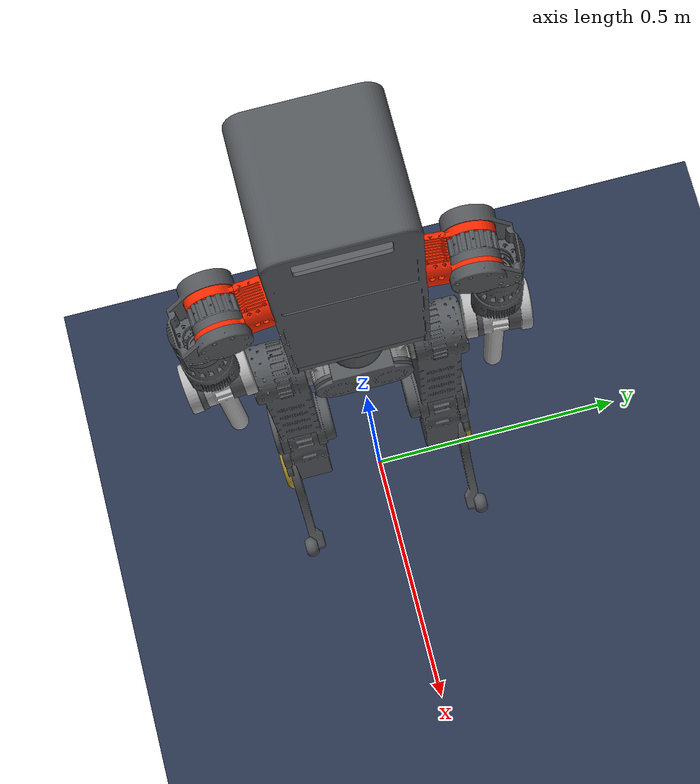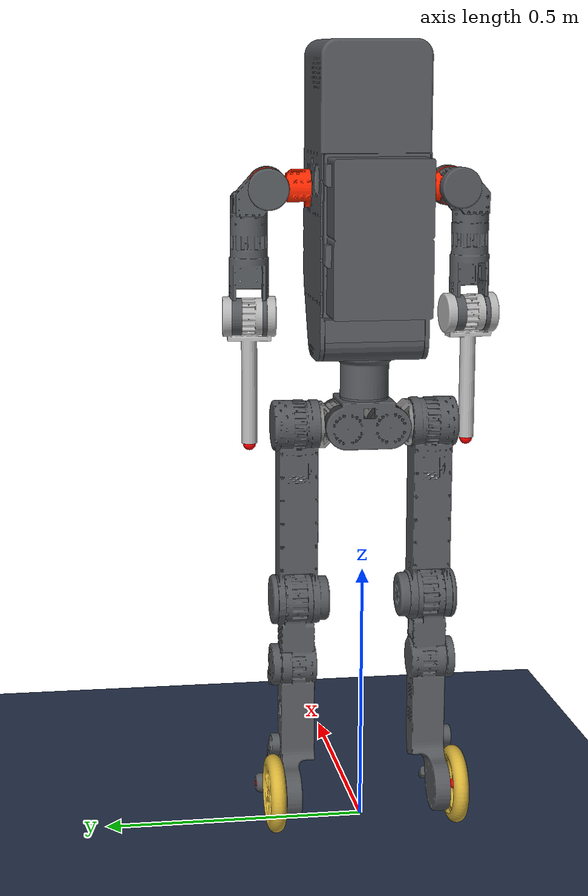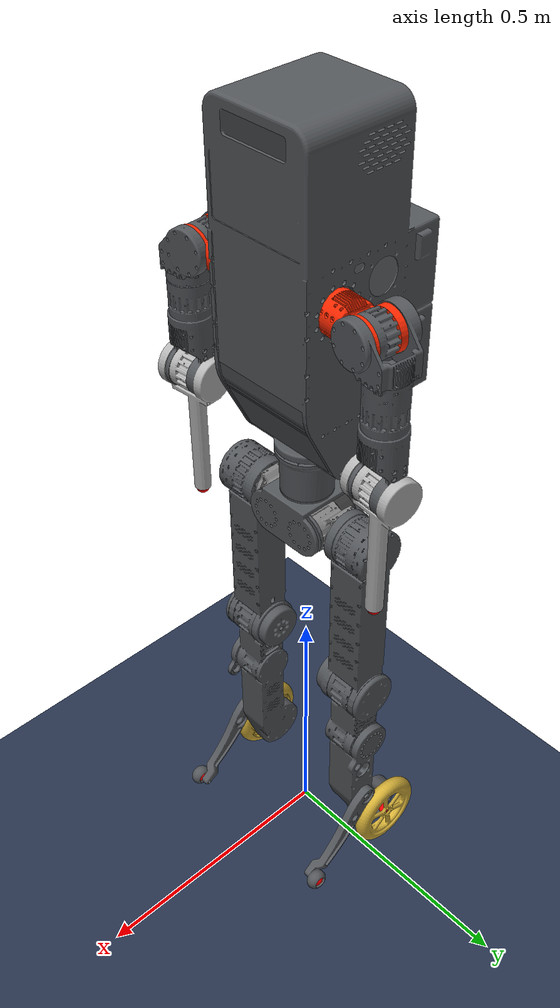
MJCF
<mujoco model="MAHRU_TWL">
	<compiler angle="radian" coordinate="local" autolimits="true" meshdir="Meshes/"/>

	<option timestep="0.001" gravity="0 0 -9.81" tolerance="1e-08" cone="elliptic" jacobian="auto" solver="CG" iterations="30" />
	<size njmax="500" nconmax="100" />

	<visual>
		<global fovy="45" linewidth="2" glow="0.3"/>
		<quality shadowsize="2048" numslices="48"/>
		<map stiffness="50" stiffnessrot="100"/>
		<scale forcewidth="0.03" contactwidth="0.15" contactheight="0.1" connect="0.1" com="0.05" jointlength="0.25" jointwidth="0.05"
					 actuatorlength="0.5" actuatorwidth="0.3" framelength="1" framewidth="0.03"/>
		<rgba haze="0.6 0.8 0.9 1" force="1 0 0 0.5" com="0 0 1 1"/>
	</visual>

	<default>
		<geom contype="1" conaffinity="1" condim="3" material="MatLink"/>
		<joint limited="false" damping="2" armature="0.1" stiffness="0" frictionloss="0.2"/>
		<motor gear="1 0 0 0 0 0" ctrllimited="false" ctrlrange="-100 100"/>
	</default>

	<asset>
		<mesh name="base_link" file="base_link.STL" />
		<mesh name="TOP" file="TOP.STL" />
		<mesh name="RA1" file="RA1.STL" />
		<mesh name="RA2" file="RA2.STL" />
		<mesh name="RA3" file="RA3.STL" />
		<mesh name="RA4" file="RA4.STL" />
		<mesh name="LA1" file="LA1.STL" />
		<mesh name="LA2" file="LA2.STL" />
		<mesh name="LA3" file="LA3.STL" />
		<mesh name="LA4" file="LA4.STL" />
		<mesh name="RL1" file="RL1.STL" />
		<mesh name="RL2" file="RL2.STL" />
		<mesh name="RL3" file="RL3.STL" />
		<mesh name="RL4" file="RL4.STL" />
		<mesh name="RW" file="RW.STL" />
		<mesh name="LL1" file="LL1.STL" />
		<mesh name="LL2" file="LL2.STL" />
		<mesh name="LL3" file="LL3.STL" />
		<mesh name="LL4" file="LL4.STL" />
		<mesh name="LW" file="LW.STL" />

		<texture name="picwheel" type="2d" builtin="none" file="Wheel-01.png"/>
		<texture name="texplane" type="2d" builtin="checker"  width="512" height="512" mark="edge"
						 rgb1="0.2 0.3 0.4" rgb2="0.1 0.1 0.2" markrgb="1 1 1"/>

		<material name="MatGnd"   reflectance="0" specular="1" shininess="1" rgba="0 0.4 0.5 1"/>
		<material name="MatLink"  reflectance="0.5" specular="1" shininess="0.3" rgba="0.5 0.5 0.5 1"/>
		<material name="MatPlane" texture="texplane" reflectance='0.05' texrepeat="1 1" texuniform="true"/>
		<material name="MatWheel" texture="picwheel" emission="0.3" reflectance="0.3" shininess="0.5"/>
	</asset>

	<worldbody>
		<!-- Light-->
		<light directional="true" pos=" 5 -5 5" dir="-0.5  0.5 -1" diffuse="0.3 0.3 0.3" specular="0.0 0.0 0.0" castshadow="false"/>
		<light directional="true" pos=" 5  5 5" dir="-0.5 -0.5 -1" diffuse="0.3 0.3 0.3" specular="0.0 0.0 0.0" castshadow="false"/>
		<light directional="true" pos="-5  5 5" dir=" 0.5 -0.5 -1" diffuse="0.3 0.3 0.3" specular="0.0 0.0 0.0" castshadow="false"/>
		<light directional="true" pos="-5 -5 5" dir=" 0.5  0.5 -1" diffuse="0.3 0.3 0.3" specular="0.0 0.0 0.0" castshadow="false"/>

		<!-- Ground -->
		<geom name="Ground" type="plane" pos="0 0 0" size="0 0 1" material="MatPlane" condim="3"/>

		<body name="Pelvis" pos="0 0 0.87">
			<joint name="Floating_Base" type="free" armature="0"/>
			<inertial pos="-0.00293976 1.32398e-09 -0.0693448" quat="0.707092 0.707092 -0.00461587 0.00461587"
								mass="0.663335" diaginertia="0.00122749 0.00115815 0.000481685"/>
			<geom type="mesh" mesh="base_link" rgba="0.32421875 0.3359375 0.3515625 1"/>

			<body name="UpperBody" pos="0 0 0.35639">
				<inertial pos="-0.048997 0.00059458 -0.0674766" quat="0.998637 -0.00504995 0.051946 0.000815917"
									mass="12.7217" diaginertia="0.0573787 0.0483973 0.0405027"/>
				<joint name="TOPJ" pos="0 0 0" axis="0 0 1" limited="true" range="-0.5 0.5"/>
				<geom type="mesh" mesh="TOP" rgba="0.32421875 0.3359375 0.3515625 1"/>
				<geom type="cylinder" pos="-0.06 0 -0.27" euler="1.57 0 0" size="0.040 0.0921" rgba="0.32421875 0.3359375 0.3515625 1"/>
				<geom type="box" pos="-0.09 0 -0.22" size="0.01 0.0921 0.05" rgba="0.32421875 0.3359375 0.3515625 1"/>
				<geom type="box" pos="0.0645 0 -0.235" euler="0 0.455 0" size="0.001 0.0921 0.06" rgba="0.32421875 0.3359375 0.3515625 1"/>
				<geom type="cylinder" pos="-0.0021 0 -0.1472" euler="1.57 0 0" size="0.1 0.0921" rgba="0.32421875 0.3359375 0.3515625 1"/>

				<!-- Right Arm -->
				<body name="RA1" pos="0.047556 -0.17703 0" quat="0.706432 0.706435 0.0308435 0.0308433">
					<joint name="RAJ1" pos="0 0 0" axis="0 0 1" limited="true" range="-3.14 3.14"/>
					<inertial pos="-0.0022174 0.000646182 -0.0905734" quat="0.529029 0.519537 -0.477301 0.471586"
										mass="0.760413" diaginertia="0.000421496 0.000390053 0.000367509"/>
					<geom type="mesh" mesh="RA1" rgba="1 0.15625 0 1"/>

					<body name="RA2" pos="0 0 0" quat="-2.59734e-06 0.707105 2.59735e-06 0.707108">
						<joint name="RAJ2" pos="0 0 0" axis="0 0 1" limited="true" range="-1.57 1.57"/>
						<inertial pos="0.00839424 0.00457938 -0.00207496" quat="-0.22546 0.649098 0.212913 0.694628"
											mass="0.595912" diaginertia="0.000417113 0.000286358 0.000213342"/>
						<geom type="mesh" mesh="RA2" rgba="0.32421875 0.3359375 0.3515625 1"/>

						<body name="RA3" pos="0.035 0.12115 0.00305" quat="0.499998 -0.5 -0.5 -0.500002">
							<joint name="RAJ3" pos="0 0 0" axis="0 0 1" limited="true" range="-1 1"/>
							<inertial pos="-0.000338046 -0.00117373 0.010182" quat="-0.0187317 0.718878 -0.0217545 0.694544"
												mass="0.919977" diaginertia="0.000460641 0.000415222 0.000384275"/>
							<geom type="mesh" mesh="RA3" rgba="0.32421875 0.3359375 0.3515625 1"/>

							<body name="RA4" pos="3e-05 0.0003 0.11885" quat="0.707105 -0.707108 0 0">
								<joint name="RAJ4" pos="0 0 0" axis="0 0 1" limited="true" range="-0.05 1.7"/>
								<inertial pos="-2.9077e-05 -0.0332366 0.00190144" quat="0.500583 0.499412 -0.49929 0.500713"
													mass="0.663638" diaginertia="0.0008007 0.000678786 0.000202803"/>
								<geom name="RA" type="mesh" mesh="RA4" rgba="0.7 0.7 0.7 1"/>
								<site name="RArm_EE" pos="0 -0.245 0" size="0.012" type="sphere" rgba="1 0 0 1"/>
							</body>
						</body>
					</body>
				</body>

				<!-- Left Arm -->
				<body name="LA1" pos="0.047556 0.17703 0" quat="0.706432 0.706435 -0.0308435 -0.0308433">
					<joint name="LAJ1" pos="0 0 0" axis="0 0 1" limited="true" range="-3.14 3.14"/>
					<inertial pos="-0.00218056 0.000646182 0.0905734" quat="0.529029 0.519537 -0.477301 0.471586"
										mass="0.760413" diaginertia="0.000421496 0.000390053 0.000367509" />
					<geom type="mesh" mesh="LA1" rgba="1 0.15625 0 1"/>

					<body name="LA2" pos="0 0 0" quat="-2.59734e-06 0.707105 2.59735e-06 0.707108">
						<joint name="LAJ2" pos="0 0 0" axis="0 0 1" limited="true" range="-1.57 1.57"/>
						<inertial pos="-0.00839424 0.00464648 -0.00212455" quat="-0.22546 0.649098 0.212913 0.694628"
											mass="0.595912" diaginertia="0.000417113 0.000286358 0.000213342"/>
						<geom type="mesh" mesh="LA2" rgba="0.32421875 0.3359375 0.3515625 1"/>

						<body name="LA3" pos="-0.035 0.12115 0.00305" quat="0.499998 -0.5 -0.5 -0.500002">
							<joint name="LAJ3" pos="0 0 0" axis="0 0 1" limited="true" range="-1 1"/>
							<inertial pos="-0.000338047 -0.00117373 0.010182" quat="-0.0187317 0.718878 -0.0217545 0.694544"
												mass="0.919977" diaginertia="0.000460641 0.000415222 0.000384275"/>
							<geom type="mesh" mesh="LA3" rgba="0.32421875 0.3359375 0.3515625 1"/>

							<body name="LA4" pos="3e-05 0.0003 0.11885" quat="0.707105 -0.707108 0 0">
								<joint name="LAJ4" pos="0 0 0" axis="0 0 1" limited="true" range="-0.05 1.7"/>
								<inertial pos="-2.9077e-05 -0.0332366 0.00190144" quat="0.500583 0.499412 -0.49929 0.500713"
													mass="0.663638" diaginertia="0.0008007 0.000678786 0.000202803" />
								<geom name="LA" type="mesh" mesh="LA4" rgba="0.7 0.7 0.7 1"/>
								<site name="LArm_EE" pos="0 -0.245 0" size="0.012" type="sphere" rgba="1 0 0 1"/>
							</body>
						</body>
					</body>
				</body>
			</body> <!-- End of TOP -->

			<!-- Right Leg -->
			<body name="RL1" pos="0 -0.0405 -0.083614" quat="0.499998 -0.5 0.500002 -0.5">
				<joint name="RLJ1" pos="0 0 0" axis="0 0 1" limited="true" range="-1.57 0.1"/>
				<inertial pos="0.0277301 -0.240185 0.0201778" quat="0.522838 0.521369 -0.476954 0.476791"
									mass="1.39472" diaginertia="0.000946984 0.00078212 0.000703348" />
				<geom type="mesh" mesh="RL1" rgba="0.5 0.5 0.5 1"/>
				<geom type="cylinder" pos="0 0 -0.0275" size="0.04 0.014" rgba="0.2 0.2 0.2 1"/>
				<geom type="cylinder" pos="0 0 0.0422" size="0.04 0.003" rgba="0.32421875 0.3359375 0.3515625 1"/>

				<body name="RL2" pos="0.07925 0 0" quat="2.31078e-07 0.707105 -2.31079e-07 0.707108">
					<joint name="RLJ2" pos="0 0 0" axis="0 0 1" limited="true" range="-0.5 1.57"/>
					<inertial pos="0.000106717 -0.0839727 -0.0181511" quat="0.505728 0.506179 -0.494252 0.493698"
										mass="2.22253" diaginertia="0.0101134 0.00973372 0.00125876"/>
					<geom type="mesh" mesh="RL2" rgba="0.32421875 0.3359375 0.3515625 1"/>

					<body name="RL3" pos="0 -0.34 0">
						<joint name="RLJ3" pos="0 0 0" axis="0 0 1" limited="true" range="-1.7 0"/>
						<inertial pos="-0.0043099 -0.139813 0.012094" quat="0.534991 0.471054 -0.505093 0.486594"
											mass="2.32414" diaginertia="0.0195557 0.0184456 0.0016263" />
						<geom type="mesh" mesh="RL3" rgba="0.32421875 0.3359375 0.3515625 1"/>

						<body name="RL4" pos="0 -0.292 0.04575" euler="0 0 0">
							<inertial pos="0.0457249 0.0172073 0.00788433" quat="0.334716 0.637561 -0.325643 0.612729"
												mass="0.56011" diaginertia="0.00128601 0.00110098 0.000219687" />
							<joint name="RLJ4" pos="0 0 0" axis="0 0 1" limited="true" range="-0.1 0.1"/>
							<geom name="RTW" type="mesh" mesh="RL4" rgba="0.32421875 0.3359375 0.3515625 1"/>
							<site name="RToe" pos="0.140 -0.138 0.012" size="0.013" type="sphere" rgba="1 0 0 1"/>
						</body>

						<body name="RW" pos="-0.05 -0.375 0.05775">
							<joint name="RWJ" pos="0 0 0" axis="0 0 1"/>
							<inertial pos="-3.13582e-05 -2.36301e-05 -0.00592704" quat="0.315268 0.632694 -0.315751 0.632934"
												mass="0.702654" diaginertia="0.00171837 0.000925024 0.000924166"/>
							<geom name="RW" type="mesh" mesh="RW" rgba="0.828125 0.68359375 0.21484375 1"/>
							<site name="RWheel_C" pos="0 0 0" size="0.01" type="sphere" rgba="1 0 0 1"/>
						</body>
					</body>
				</body>
			</body>

			<!-- Left Leg -->
			<body name="LL1" pos="0 0.0405 -0.083614" quat="0.499998 -0.5 0.500002 -0.5">
				<joint name="LLJ1" pos="0 0 0" axis="0 0 1" limited="true" range="-0.1 1.57"/>
				<inertial pos="-0.00522959 -0.000129003 -0.000532259" quat="0.522838 0.521369 -0.476954 0.476791"
									mass="1.39472" diaginertia="0.000946984 0.00078212 0.000703348" />
				<geom type="mesh" mesh="LL1" rgba="0.5 0.5 0.5 1"/>
				<geom type="cylinder" pos="0 0 -0.0275" size="0.04 0.014" rgba="0.2 0.2 0.2 1"/>
				<geom type="cylinder" pos="0 0 0.0422" size="0.04 0.003" rgba="0.32421875 0.3359375 0.3515625 1"/>

				<body name="LL2" pos="-0.07925 0 0" quat="2.31078e-07 0.707105 -2.31079e-07 0.707108">
					<joint name="LLJ2" pos="0 0 0" axis="0 0 1" limited="true" range="-0.5 1.57"/>
					<inertial pos="0.000361913 -0.117601 -0.00414202" quat="0.505728 0.506179 -0.494252 0.493698"
										mass="2.22253" diaginertia="0.0101134 0.00973372 0.00125876"/>
					<geom type="mesh" mesh="LL2" rgba="0.32421875 0.3359375 0.3515625 1"/>

					<body name="LL3" pos="0 -0.34 0">
						<joint name="LLJ3" pos="0 0 0" axis="0 0 1" limited="true" range="-1.7 0"/>
						<inertial pos="-0.00430926 -0.139813 -0.012094" quat="0.534991 0.471054 -0.505093 0.486594"
											mass="2.32414" diaginertia="0.0195557 0.0184456 0.0016263" />
						<geom type="mesh" mesh="LL3" rgba="0.32421875 0.3359375 0.3515625 1"/>

						<body name="LL4" pos="0 -0.292 -0.04575">
							<inertial pos="0.0457383 0.0172204 -0.00788433" quat="0.334716 0.637561 -0.325643 0.612729"
												mass="0.56011" diaginertia="0.00128601 0.00110098 0.000219687" />
							<joint name="LLJ4" pos="0 0 0" axis="0 0 1" limited="true" range="-0.1 0.1"/>
							<geom name="LTW" type="mesh" mesh="LL4" rgba="0.32421875 0.3359375 0.3515625 1"/>
							<site name="LToe" pos="0.140 -0.138 -0.012" size="0.013" type="sphere" rgba="1 0 0 1"/>
						</body>

						<body name="LW" pos="-0.05 -0.375 -0.05775">
							<inertial pos="-1.59704e-05 -3.58702e-05 0.00592704" quat="0.315268 0.632694 -0.315751 0.632934"
												mass="0.702654" diaginertia="0.00171837 0.000925024 0.000924166" />
							<joint name="LWJ" pos="0 0 0" axis="0 0 1"/>
							<geom name="LW" type="mesh" mesh="LW" rgba="0.828125 0.68359375 0.21484375 1"/>
							<site name="LWheel_C" pos="0 0 0" size="0.01" type="sphere" rgba="1 0 0 1"/>
						</body>
					</body>
				</body>
			</body> <!-- End of Left Leg -->

		</body> <!-- End of Base_Link -->
	</worldbody>

	<contact>
		<pair name="GrContact_RA" geom1="Ground" geom2="RA" friction="10 10 1 1 1"/>
		<pair name="GrContact_LA" geom1="Ground" geom2="LA" friction="10 10 1 1 1"/>

		<pair name="GrContact_RW" geom1="Ground" geom2="RW" friction="10 10 1 1 1"/>
		<pair name="GrContact_LW" geom1="Ground" geom2="LW" friction="10 10 1 1 1"/>

		<pair name="GrContact_RTW" geom1="Ground" geom2="RTW" friction="10 10 1 1 1"/>
		<pair name="GrContact_LTW" geom1="Ground" geom2="LTW" friction="10 10 1 1 1"/>
	</contact>

	<actuator>
		<motor name="TOP" ctrllimited="false" gear="1 0 0 0 0 0" joint="TOPJ"/>

		<motor name="RA1" ctrllimited="false" gear="1 0 0 0 0 0" joint="RAJ1"/>
		<motor name="RA2" ctrllimited="false" gear="1 0 0 0 0 0" joint="RAJ2"/>
		<motor name="RA3" ctrllimited="false" gear="1 0 0 0 0 0" joint="RAJ3"/>
		<motor name="RA4" ctrllimited="false" gear="1 0 0 0 0 0" joint="RAJ4"/>

		<motor name="LA1" ctrllimited="false" gear="1 0 0 0 0 0" joint="LAJ1"/>
		<motor name="LA2" ctrllimited="false" gear="1 0 0 0 0 0" joint="LAJ2"/>
		<motor name="LA3" ctrllimited="false" gear="1 0 0 0 0 0" joint="LAJ3"/>
		<motor name="LA4" ctrllimited="false" gear="1 0 0 0 0 0" joint="LAJ4"/>

		<motor name="RL1" ctrllimited="false" gear="1 0 0 0 0 0" joint="RLJ1"/>
		<motor name="RL2" ctrllimited="false" gear="1 0 0 0 0 0" joint="RLJ2"/>
		<motor name="RL3" ctrllimited="false" gear="1 0 0 0 0 0" joint="RLJ3"/>
		<motor name="RL4" ctrllimited="false" gear="1 0 0 0 0 0" joint="RLJ4"/>
		<motor name="RW" ctrllimited="false" gear="1 0 0 0 0 0" joint="RWJ"/>

		<motor name="LL1" ctrllimited="false" gear="1 0 0 0 0 0" joint="LLJ1"/>
		<motor name="LL2" ctrllimited="false" gear="1 0 0 0 0 0" joint="LLJ2"/>
		<motor name="LL3" ctrllimited="false" gear="1 0 0 0 0 0" joint="LLJ3"/>
		<motor name="LL4" ctrllimited="false" gear="1 0 0 0 0 0" joint="LLJ4"/>
		<motor name="LW" ctrllimited="false" gear="1 0 0 0 0 0" joint="LWJ"/>
	</actuator>
</mujoco>
